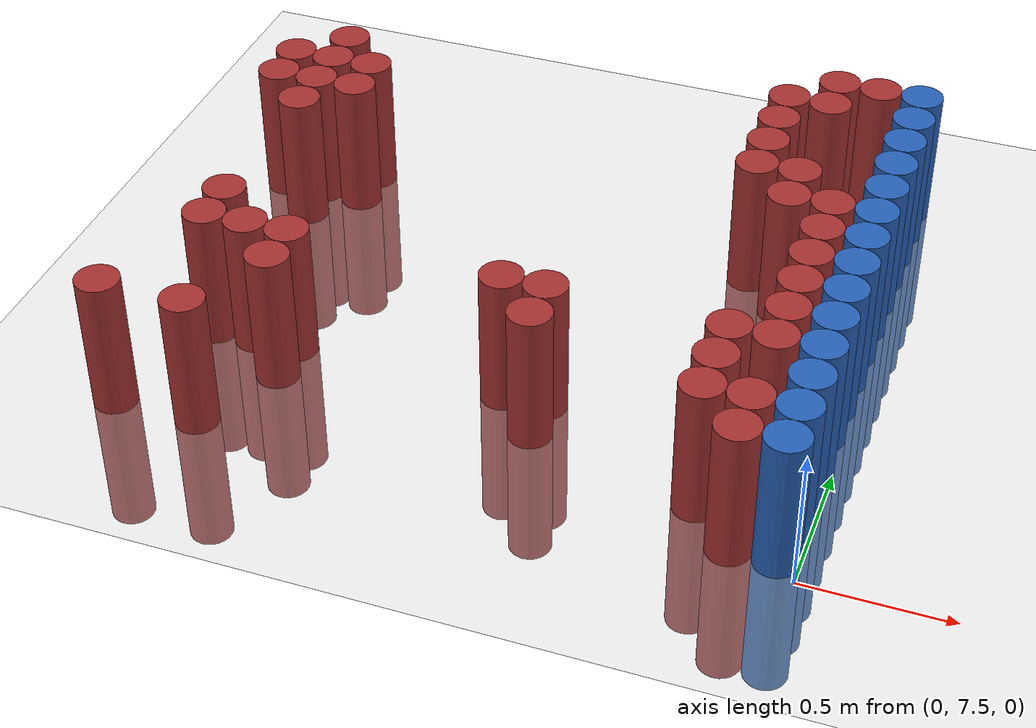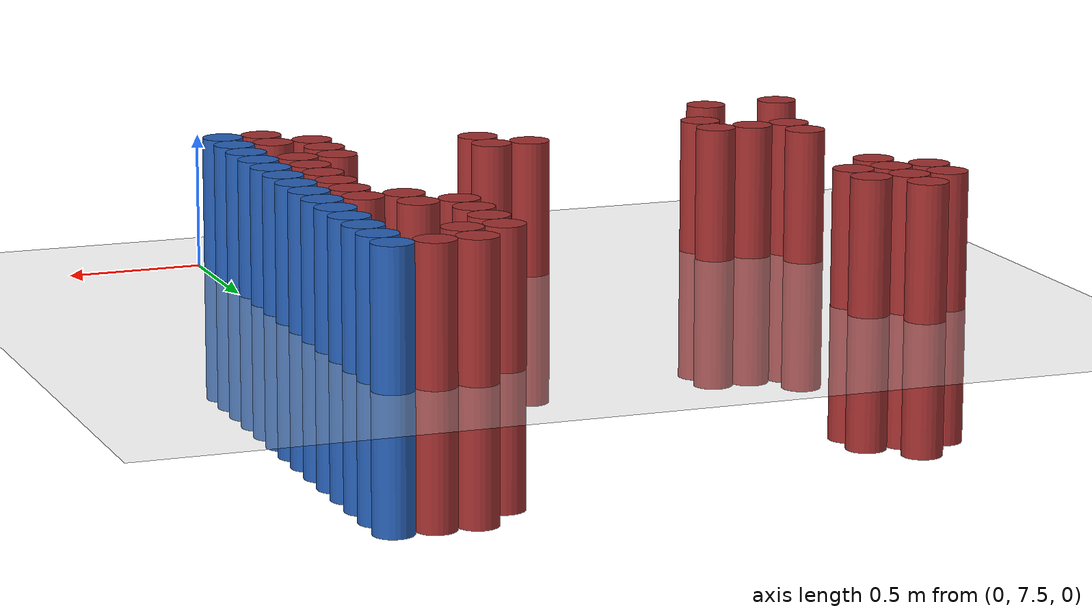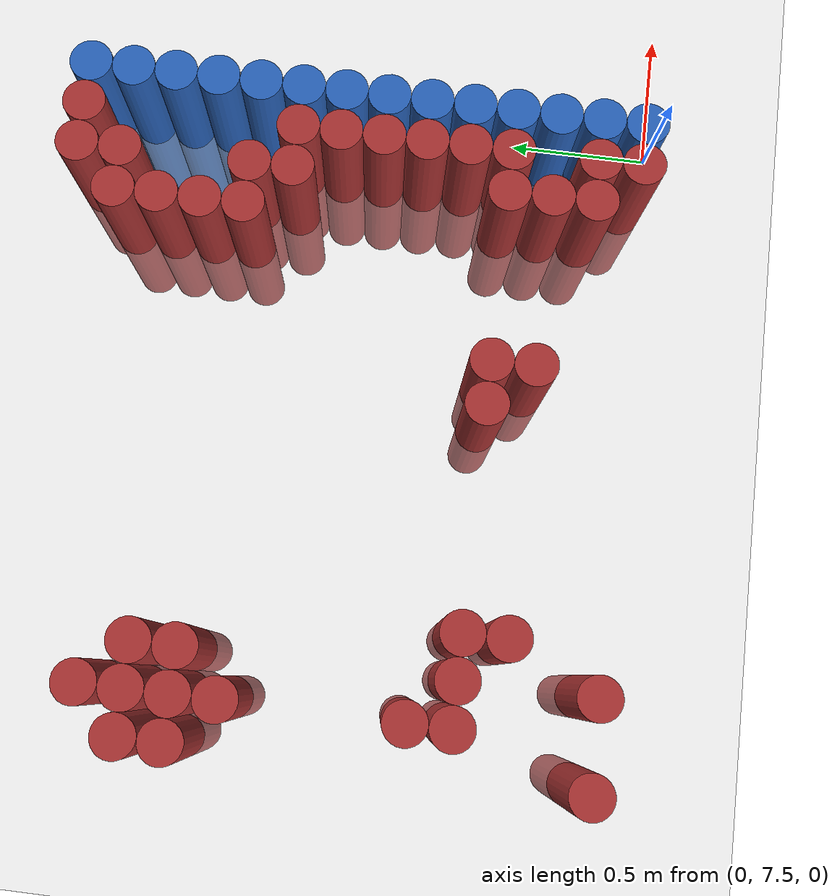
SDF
<sdf version="1.6">
 <world name="default">
  <model name="ground_plane">
   <static>1</static>
   <link name="link">
    <collision name="collision">
     <geometry><plane><normal>0 0 1</normal><size>100 100</size></plane></geometry>
     <surface><friction><ode><mu>100</mu><mu2>50</mu2></ode></friction></surface>
    </collision>
    <visual name="visual">
     <cast_shadows>0</cast_shadows>
     <geometry><plane><normal>0 0 1</normal><size>100 100</size></plane></geometry>
     <material>
      <script><uri>file://media/materials/scripts/gazebo.material</uri><name>Gazebo/Grey</name></script>
     </material>
    </visual>
   </link>
  </model>
  <model name="unit_cylinder_163">
   <static>1</static>
   <pose>-2.325000 7.575000 0.000000 0.000000 0.000000 0.000000</pose>
   <link name="link">
    <inertial>
     <mass>1</mass>
     <inertia><ixx>0.145833</ixx><ixy>0</ixy><ixz>0</ixz><iyy>0.145833</iyy><iyz>0</iyz><izz>0.125</izz></inertia>
    </inertial>
    <collision name="collision">
     <geometry><cylinder><radius>0.075000</radius><length>1</length></cylinder></geometry>
    </collision>
    <visual name="visual">
     <geometry><cylinder><radius>0.075000</radius><length>1</length></cylinder></geometry>
     <material>
      <ambient>0.648000 0.192000 0.192000 1</ambient>
      <diffuse>0.648000 0.192000 0.192000 1</diffuse>
     </material>
     <material>
      <script><name>Gazebo/Grey</name><uri>file://media/materials/scripts/gazebo.material</uri></script>
     </material>
    </visual>
   </link>
  </model>
  <model name="unit_cylinder_164">
   <static>1</static>
   <pose>-2.325000 8.925000 0.000000 0.000000 0.000000 0.000000</pose>
   <link name="link">
    <inertial>
     <mass>1</mass>
     <inertia><ixx>0.145833</ixx><ixy>0</ixy><ixz>0</ixz><iyy>0.145833</iyy><iyz>0</iyz><izz>0.125</izz></inertia>
    </inertial>
    <collision name="collision">
     <geometry><cylinder><radius>0.075000</radius><length>1</length></cylinder></geometry>
    </collision>
    <visual name="visual">
     <geometry><cylinder><radius>0.075000</radius><length>1</length></cylinder></geometry>
     <material>
      <ambient>0.648000 0.192000 0.192000 1</ambient>
      <diffuse>0.648000 0.192000 0.192000 1</diffuse>
     </material>
     <material>
      <script><name>Gazebo/Grey</name><uri>file://media/materials/scripts/gazebo.material</uri></script>
     </material>
    </visual>
   </link>
  </model>
  <model name="unit_cylinder_165">
   <static>1</static>
   <pose>-2.325000 9.075000 0.000000 0.000000 0.000000 0.000000</pose>
   <link name="link">
    <inertial>
     <mass>1</mass>
     <inertia><ixx>0.145833</ixx><ixy>0</ixy><ixz>0</ixz><iyy>0.145833</iyy><iyz>0</iyz><izz>0.125</izz></inertia>
    </inertial>
    <collision name="collision">
     <geometry><cylinder><radius>0.075000</radius><length>1</length></cylinder></geometry>
    </collision>
    <visual name="visual">
     <geometry><cylinder><radius>0.075000</radius><length>1</length></cylinder></geometry>
     <material>
      <ambient>0.648000 0.192000 0.192000 1</ambient>
      <diffuse>0.648000 0.192000 0.192000 1</diffuse>
     </material>
     <material>
      <script><name>Gazebo/Grey</name><uri>file://media/materials/scripts/gazebo.material</uri></script>
     </material>
    </visual>
   </link>
  </model>
  <model name="unit_cylinder_169">
   <static>1</static>
   <pose>-2.175000 8.025000 0.000000 0.000000 0.000000 0.000000</pose>
   <link name="link">
    <inertial>
     <mass>1</mass>
     <inertia><ixx>0.145833</ixx><ixy>0</ixy><ixz>0</ixz><iyy>0.145833</iyy><iyz>0</iyz><izz>0.125</izz></inertia>
    </inertial>
    <collision name="collision">
     <geometry><cylinder><radius>0.075000</radius><length>1</length></cylinder></geometry>
    </collision>
    <visual name="visual">
     <geometry><cylinder><radius>0.075000</radius><length>1</length></cylinder></geometry>
     <material>
      <ambient>0.648000 0.192000 0.192000 1</ambient>
      <diffuse>0.648000 0.192000 0.192000 1</diffuse>
     </material>
     <material>
      <script><name>Gazebo/Grey</name><uri>file://media/materials/scripts/gazebo.material</uri></script>
     </material>
    </visual>
   </link>
  </model>
  <model name="unit_cylinder_170">
   <static>1</static>
   <pose>-2.175000 8.175000 0.000000 0.000000 0.000000 0.000000</pose>
   <link name="link">
    <inertial>
     <mass>1</mass>
     <inertia><ixx>0.145833</ixx><ixy>0</ixy><ixz>0</ixz><iyy>0.145833</iyy><iyz>0</iyz><izz>0.125</izz></inertia>
    </inertial>
    <collision name="collision">
     <geometry><cylinder><radius>0.075000</radius><length>1</length></cylinder></geometry>
    </collision>
    <visual name="visual">
     <geometry><cylinder><radius>0.075000</radius><length>1</length></cylinder></geometry>
     <material>
      <ambient>0.648000 0.192000 0.192000 1</ambient>
      <diffuse>0.648000 0.192000 0.192000 1</diffuse>
     </material>
     <material>
      <script><name>Gazebo/Grey</name><uri>file://media/materials/scripts/gazebo.material</uri></script>
     </material>
    </visual>
   </link>
  </model>
  <model name="unit_cylinder_171">
   <static>1</static>
   <pose>-2.175000 8.775000 0.000000 0.000000 0.000000 0.000000</pose>
   <link name="link">
    <inertial>
     <mass>1</mass>
     <inertia><ixx>0.145833</ixx><ixy>0</ixy><ixz>0</ixz><iyy>0.145833</iyy><iyz>0</iyz><izz>0.125</izz></inertia>
    </inertial>
    <collision name="collision">
     <geometry><cylinder><radius>0.075000</radius><length>1</length></cylinder></geometry>
    </collision>
    <visual name="visual">
     <geometry><cylinder><radius>0.075000</radius><length>1</length></cylinder></geometry>
     <material>
      <ambient>0.648000 0.192000 0.192000 1</ambient>
      <diffuse>0.648000 0.192000 0.192000 1</diffuse>
     </material>
     <material>
      <script><name>Gazebo/Grey</name><uri>file://media/materials/scripts/gazebo.material</uri></script>
     </material>
    </visual>
   </link>
  </model>
  <model name="unit_cylinder_172">
   <static>1</static>
   <pose>-2.175000 8.925000 0.000000 0.000000 0.000000 0.000000</pose>
   <link name="link">
    <inertial>
     <mass>1</mass>
     <inertia><ixx>0.145833</ixx><ixy>0</ixy><ixz>0</ixz><iyy>0.145833</iyy><iyz>0</iyz><izz>0.125</izz></inertia>
    </inertial>
    <collision name="collision">
     <geometry><cylinder><radius>0.075000</radius><length>1</length></cylinder></geometry>
    </collision>
    <visual name="visual">
     <geometry><cylinder><radius>0.075000</radius><length>1</length></cylinder></geometry>
     <material>
      <ambient>0.648000 0.192000 0.192000 1</ambient>
      <diffuse>0.648000 0.192000 0.192000 1</diffuse>
     </material>
     <material>
      <script><name>Gazebo/Grey</name><uri>file://media/materials/scripts/gazebo.material</uri></script>
     </material>
    </visual>
   </link>
  </model>
  <model name="unit_cylinder_173">
   <static>1</static>
   <pose>-2.175000 9.075000 0.000000 0.000000 0.000000 0.000000</pose>
   <link name="link">
    <inertial>
     <mass>1</mass>
     <inertia><ixx>0.145833</ixx><ixy>0</ixy><ixz>0</ixz><iyy>0.145833</iyy><iyz>0</iyz><izz>0.125</izz></inertia>
    </inertial>
    <collision name="collision">
     <geometry><cylinder><radius>0.075000</radius><length>1</length></cylinder></geometry>
    </collision>
    <visual name="visual">
     <geometry><cylinder><radius>0.075000</radius><length>1</length></cylinder></geometry>
     <material>
      <ambient>0.648000 0.192000 0.192000 1</ambient>
      <diffuse>0.648000 0.192000 0.192000 1</diffuse>
     </material>
     <material>
      <script><name>Gazebo/Grey</name><uri>file://media/materials/scripts/gazebo.material</uri></script>
     </material>
    </visual>
   </link>
  </model>
  <model name="unit_cylinder_174">
   <static>1</static>
   <pose>-2.175000 9.225000 0.000000 0.000000 0.000000 0.000000</pose>
   <link name="link">
    <inertial>
     <mass>1</mass>
     <inertia><ixx>0.145833</ixx><ixy>0</ixy><ixz>0</ixz><iyy>0.145833</iyy><iyz>0</iyz><izz>0.125</izz></inertia>
    </inertial>
    <collision name="collision">
     <geometry><cylinder><radius>0.075000</radius><length>1</length></cylinder></geometry>
    </collision>
    <visual name="visual">
     <geometry><cylinder><radius>0.075000</radius><length>1</length></cylinder></geometry>
     <material>
      <ambient>0.648000 0.192000 0.192000 1</ambient>
      <diffuse>0.648000 0.192000 0.192000 1</diffuse>
     </material>
     <material>
      <script><name>Gazebo/Grey</name><uri>file://media/materials/scripts/gazebo.material</uri></script>
     </material>
    </visual>
   </link>
  </model>
  <model name="unit_cylinder_176">
   <static>1</static>
   <pose>-2.025000 7.575000 0.000000 0.000000 0.000000 0.000000</pose>
   <link name="link">
    <inertial>
     <mass>1</mass>
     <inertia><ixx>0.145833</ixx><ixy>0</ixy><ixz>0</ixz><iyy>0.145833</iyy><iyz>0</iyz><izz>0.125</izz></inertia>
    </inertial>
    <collision name="collision">
     <geometry><cylinder><radius>0.075000</radius><length>1</length></cylinder></geometry>
    </collision>
    <visual name="visual">
     <geometry><cylinder><radius>0.075000</radius><length>1</length></cylinder></geometry>
     <material>
      <ambient>0.648000 0.192000 0.192000 1</ambient>
      <diffuse>0.648000 0.192000 0.192000 1</diffuse>
     </material>
     <material>
      <script><name>Gazebo/Grey</name><uri>file://media/materials/scripts/gazebo.material</uri></script>
     </material>
    </visual>
   </link>
  </model>
  <model name="unit_cylinder_177">
   <static>1</static>
   <pose>-2.025000 8.025000 0.000000 0.000000 0.000000 0.000000</pose>
   <link name="link">
    <inertial>
     <mass>1</mass>
     <inertia><ixx>0.145833</ixx><ixy>0</ixy><ixz>0</ixz><iyy>0.145833</iyy><iyz>0</iyz><izz>0.125</izz></inertia>
    </inertial>
    <collision name="collision">
     <geometry><cylinder><radius>0.075000</radius><length>1</length></cylinder></geometry>
    </collision>
    <visual name="visual">
     <geometry><cylinder><radius>0.075000</radius><length>1</length></cylinder></geometry>
     <material>
      <ambient>0.648000 0.192000 0.192000 1</ambient>
      <diffuse>0.648000 0.192000 0.192000 1</diffuse>
     </material>
     <material>
      <script><name>Gazebo/Grey</name><uri>file://media/materials/scripts/gazebo.material</uri></script>
     </material>
    </visual>
   </link>
  </model>
  <model name="unit_cylinder_178">
   <static>1</static>
   <pose>-2.025000 8.925000 0.000000 0.000000 0.000000 0.000000</pose>
   <link name="link">
    <inertial>
     <mass>1</mass>
     <inertia><ixx>0.145833</ixx><ixy>0</ixy><ixz>0</ixz><iyy>0.145833</iyy><iyz>0</iyz><izz>0.125</izz></inertia>
    </inertial>
    <collision name="collision">
     <geometry><cylinder><radius>0.075000</radius><length>1</length></cylinder></geometry>
    </collision>
    <visual name="visual">
     <geometry><cylinder><radius>0.075000</radius><length>1</length></cylinder></geometry>
     <material>
      <ambient>0.648000 0.192000 0.192000 1</ambient>
      <diffuse>0.648000 0.192000 0.192000 1</diffuse>
     </material>
     <material>
      <script><name>Gazebo/Grey</name><uri>file://media/materials/scripts/gazebo.material</uri></script>
     </material>
    </visual>
   </link>
  </model>
  <model name="unit_cylinder_179">
   <static>1</static>
   <pose>-2.025000 9.075000 0.000000 0.000000 0.000000 0.000000</pose>
   <link name="link">
    <inertial>
     <mass>1</mass>
     <inertia><ixx>0.145833</ixx><ixy>0</ixy><ixz>0</ixz><iyy>0.145833</iyy><iyz>0</iyz><izz>0.125</izz></inertia>
    </inertial>
    <collision name="collision">
     <geometry><cylinder><radius>0.075000</radius><length>1</length></cylinder></geometry>
    </collision>
    <visual name="visual">
     <geometry><cylinder><radius>0.075000</radius><length>1</length></cylinder></geometry>
     <material>
      <ambient>0.648000 0.192000 0.192000 1</ambient>
      <diffuse>0.648000 0.192000 0.192000 1</diffuse>
     </material>
     <material>
      <script><name>Gazebo/Grey</name><uri>file://media/materials/scripts/gazebo.material</uri></script>
     </material>
    </visual>
   </link>
  </model>
  <model name="unit_cylinder_181">
   <static>1</static>
   <pose>-1.875000 7.875000 0.000000 0.000000 0.000000 0.000000</pose>
   <link name="link">
    <inertial>
     <mass>1</mass>
     <inertia><ixx>0.145833</ixx><ixy>0</ixy><ixz>0</ixz><iyy>0.145833</iyy><iyz>0</iyz><izz>0.125</izz></inertia>
    </inertial>
    <collision name="collision">
     <geometry><cylinder><radius>0.075000</radius><length>1</length></cylinder></geometry>
    </collision>
    <visual name="visual">
     <geometry><cylinder><radius>0.075000</radius><length>1</length></cylinder></geometry>
     <material>
      <ambient>0.648000 0.192000 0.192000 1</ambient>
      <diffuse>0.648000 0.192000 0.192000 1</diffuse>
     </material>
     <material>
      <script><name>Gazebo/Grey</name><uri>file://media/materials/scripts/gazebo.material</uri></script>
     </material>
    </visual>
   </link>
  </model>
  <model name="unit_cylinder_182">
   <static>1</static>
   <pose>-1.875000 8.025000 0.000000 0.000000 0.000000 0.000000</pose>
   <link name="link">
    <inertial>
     <mass>1</mass>
     <inertia><ixx>0.145833</ixx><ixy>0</ixy><ixz>0</ixz><iyy>0.145833</iyy><iyz>0</iyz><izz>0.125</izz></inertia>
    </inertial>
    <collision name="collision">
     <geometry><cylinder><radius>0.075000</radius><length>1</length></cylinder></geometry>
    </collision>
    <visual name="visual">
     <geometry><cylinder><radius>0.075000</radius><length>1</length></cylinder></geometry>
     <material>
      <ambient>0.648000 0.192000 0.192000 1</ambient>
      <diffuse>0.648000 0.192000 0.192000 1</diffuse>
     </material>
     <material>
      <script><name>Gazebo/Grey</name><uri>file://media/materials/scripts/gazebo.material</uri></script>
     </material>
    </visual>
   </link>
  </model>
  <model name="unit_cylinder_190">
   <static>1</static>
   <pose>-1.125000 8.025000 0.000000 0.000000 0.000000 0.000000</pose>
   <link name="link">
    <inertial>
     <mass>1</mass>
     <inertia><ixx>0.145833</ixx><ixy>0</ixy><ixz>0</ixz><iyy>0.145833</iyy><iyz>0</iyz><izz>0.125</izz></inertia>
    </inertial>
    <collision name="collision">
     <geometry><cylinder><radius>0.075000</radius><length>1</length></cylinder></geometry>
    </collision>
    <visual name="visual">
     <geometry><cylinder><radius>0.075000</radius><length>1</length></cylinder></geometry>
     <material>
      <ambient>0.648000 0.192000 0.192000 1</ambient>
      <diffuse>0.648000 0.192000 0.192000 1</diffuse>
     </material>
     <material>
      <script><name>Gazebo/Grey</name><uri>file://media/materials/scripts/gazebo.material</uri></script>
     </material>
    </visual>
   </link>
  </model>
  <model name="unit_cylinder_193">
   <static>1</static>
   <pose>-0.975000 7.875000 0.000000 0.000000 0.000000 0.000000</pose>
   <link name="link">
    <inertial>
     <mass>1</mass>
     <inertia><ixx>0.145833</ixx><ixy>0</ixy><ixz>0</ixz><iyy>0.145833</iyy><iyz>0</iyz><izz>0.125</izz></inertia>
    </inertial>
    <collision name="collision">
     <geometry><cylinder><radius>0.075000</radius><length>1</length></cylinder></geometry>
    </collision>
    <visual name="visual">
     <geometry><cylinder><radius>0.075000</radius><length>1</length></cylinder></geometry>
     <material>
      <ambient>0.648000 0.192000 0.192000 1</ambient>
      <diffuse>0.648000 0.192000 0.192000 1</diffuse>
     </material>
     <material>
      <script><name>Gazebo/Grey</name><uri>file://media/materials/scripts/gazebo.material</uri></script>
     </material>
    </visual>
   </link>
  </model>
  <model name="unit_cylinder_194">
   <static>1</static>
   <pose>-0.975000 8.025000 0.000000 0.000000 0.000000 0.000000</pose>
   <link name="link">
    <inertial>
     <mass>1</mass>
     <inertia><ixx>0.145833</ixx><ixy>0</ixy><ixz>0</ixz><iyy>0.145833</iyy><iyz>0</iyz><izz>0.125</izz></inertia>
    </inertial>
    <collision name="collision">
     <geometry><cylinder><radius>0.075000</radius><length>1</length></cylinder></geometry>
    </collision>
    <visual name="visual">
     <geometry><cylinder><radius>0.075000</radius><length>1</length></cylinder></geometry>
     <material>
      <ambient>0.648000 0.192000 0.192000 1</ambient>
      <diffuse>0.648000 0.192000 0.192000 1</diffuse>
     </material>
     <material>
      <script><name>Gazebo/Grey</name><uri>file://media/materials/scripts/gazebo.material</uri></script>
     </material>
    </visual>
   </link>
  </model>
  <model name="unit_cylinder_196">
   <static>1</static>
   <pose>-0.525000 8.925000 0.000000 0.000000 0.000000 0.000000</pose>
   <link name="link">
    <inertial>
     <mass>1</mass>
     <inertia><ixx>0.145833</ixx><ixy>0</ixy><ixz>0</ixz><iyy>0.145833</iyy><iyz>0</iyz><izz>0.125</izz></inertia>
    </inertial>
    <collision name="collision">
     <geometry><cylinder><radius>0.075000</radius><length>1</length></cylinder></geometry>
    </collision>
    <visual name="visual">
     <geometry><cylinder><radius>0.075000</radius><length>1</length></cylinder></geometry>
     <material>
      <ambient>0.648000 0.192000 0.192000 1</ambient>
      <diffuse>0.648000 0.192000 0.192000 1</diffuse>
     </material>
     <material>
      <script><name>Gazebo/Grey</name><uri>file://media/materials/scripts/gazebo.material</uri></script>
     </material>
    </visual>
   </link>
  </model>
  <model name="unit_cylinder_197">
   <static>1</static>
   <pose>-0.525000 9.075000 0.000000 0.000000 0.000000 0.000000</pose>
   <link name="link">
    <inertial>
     <mass>1</mass>
     <inertia><ixx>0.145833</ixx><ixy>0</ixy><ixz>0</ixz><iyy>0.145833</iyy><iyz>0</iyz><izz>0.125</izz></inertia>
    </inertial>
    <collision name="collision">
     <geometry><cylinder><radius>0.075000</radius><length>1</length></cylinder></geometry>
    </collision>
    <visual name="visual">
     <geometry><cylinder><radius>0.075000</radius><length>1</length></cylinder></geometry>
     <material>
      <ambient>0.648000 0.192000 0.192000 1</ambient>
      <diffuse>0.648000 0.192000 0.192000 1</diffuse>
     </material>
     <material>
      <script><name>Gazebo/Grey</name><uri>file://media/materials/scripts/gazebo.material</uri></script>
     </material>
    </visual>
   </link>
  </model>
  <model name="unit_cylinder_198">
   <static>1</static>
   <pose>-0.525000 9.225000 0.000000 0.000000 0.000000 0.000000</pose>
   <link name="link">
    <inertial>
     <mass>1</mass>
     <inertia><ixx>0.145833</ixx><ixy>0</ixy><ixz>0</ixz><iyy>0.145833</iyy><iyz>0</iyz><izz>0.125</izz></inertia>
    </inertial>
    <collision name="collision">
     <geometry><cylinder><radius>0.075000</radius><length>1</length></cylinder></geometry>
    </collision>
    <visual name="visual">
     <geometry><cylinder><radius>0.075000</radius><length>1</length></cylinder></geometry>
     <material>
      <ambient>0.648000 0.192000 0.192000 1</ambient>
      <diffuse>0.648000 0.192000 0.192000 1</diffuse>
     </material>
     <material>
      <script><name>Gazebo/Grey</name><uri>file://media/materials/scripts/gazebo.material</uri></script>
     </material>
    </visual>
   </link>
  </model>
  <model name="unit_cylinder_199">
   <static>1</static>
   <pose>-0.525000 9.375000 0.000000 0.000000 0.000000 0.000000</pose>
   <link name="link">
    <inertial>
     <mass>1</mass>
     <inertia><ixx>0.145833</ixx><ixy>0</ixy><ixz>0</ixz><iyy>0.145833</iyy><iyz>0</iyz><izz>0.125</izz></inertia>
    </inertial>
    <collision name="collision">
     <geometry><cylinder><radius>0.075000</radius><length>1</length></cylinder></geometry>
    </collision>
    <visual name="visual">
     <geometry><cylinder><radius>0.075000</radius><length>1</length></cylinder></geometry>
     <material>
      <ambient>0.648000 0.192000 0.192000 1</ambient>
      <diffuse>0.648000 0.192000 0.192000 1</diffuse>
     </material>
     <material>
      <script><name>Gazebo/Grey</name><uri>file://media/materials/scripts/gazebo.material</uri></script>
     </material>
    </visual>
   </link>
  </model>
  <model name="unit_cylinder_202">
   <static>1</static>
   <pose>-0.375000 7.725000 0.000000 0.000000 0.000000 0.000000</pose>
   <link name="link">
    <inertial>
     <mass>1</mass>
     <inertia><ixx>0.145833</ixx><ixy>0</ixy><ixz>0</ixz><iyy>0.145833</iyy><iyz>0</iyz><izz>0.125</izz></inertia>
    </inertial>
    <collision name="collision">
     <geometry><cylinder><radius>0.075000</radius><length>1</length></cylinder></geometry>
    </collision>
    <visual name="visual">
     <geometry><cylinder><radius>0.075000</radius><length>1</length></cylinder></geometry>
     <material>
      <ambient>0.648000 0.192000 0.192000 1</ambient>
      <diffuse>0.648000 0.192000 0.192000 1</diffuse>
     </material>
     <material>
      <script><name>Gazebo/Grey</name><uri>file://media/materials/scripts/gazebo.material</uri></script>
     </material>
    </visual>
   </link>
  </model>
  <model name="unit_cylinder_203">
   <static>1</static>
   <pose>-0.375000 7.875000 0.000000 0.000000 0.000000 0.000000</pose>
   <link name="link">
    <inertial>
     <mass>1</mass>
     <inertia><ixx>0.145833</ixx><ixy>0</ixy><ixz>0</ixz><iyy>0.145833</iyy><iyz>0</iyz><izz>0.125</izz></inertia>
    </inertial>
    <collision name="collision">
     <geometry><cylinder><radius>0.075000</radius><length>1</length></cylinder></geometry>
    </collision>
    <visual name="visual">
     <geometry><cylinder><radius>0.075000</radius><length>1</length></cylinder></geometry>
     <material>
      <ambient>0.648000 0.192000 0.192000 1</ambient>
      <diffuse>0.648000 0.192000 0.192000 1</diffuse>
     </material>
     <material>
      <script><name>Gazebo/Grey</name><uri>file://media/materials/scripts/gazebo.material</uri></script>
     </material>
    </visual>
   </link>
  </model>
  <model name="unit_cylinder_204">
   <static>1</static>
   <pose>-0.375000 8.025000 0.000000 0.000000 0.000000 0.000000</pose>
   <link name="link">
    <inertial>
     <mass>1</mass>
     <inertia><ixx>0.145833</ixx><ixy>0</ixy><ixz>0</ixz><iyy>0.145833</iyy><iyz>0</iyz><izz>0.125</izz></inertia>
    </inertial>
    <collision name="collision">
     <geometry><cylinder><radius>0.075000</radius><length>1</length></cylinder></geometry>
    </collision>
    <visual name="visual">
     <geometry><cylinder><radius>0.075000</radius><length>1</length></cylinder></geometry>
     <material>
      <ambient>0.648000 0.192000 0.192000 1</ambient>
      <diffuse>0.648000 0.192000 0.192000 1</diffuse>
     </material>
     <material>
      <script><name>Gazebo/Grey</name><uri>file://media/materials/scripts/gazebo.material</uri></script>
     </material>
    </visual>
   </link>
  </model>
  <model name="unit_cylinder_205">
   <static>1</static>
   <pose>-0.375000 8.775000 0.000000 0.000000 0.000000 0.000000</pose>
   <link name="link">
    <inertial>
     <mass>1</mass>
     <inertia><ixx>0.145833</ixx><ixy>0</ixy><ixz>0</ixz><iyy>0.145833</iyy><iyz>0</iyz><izz>0.125</izz></inertia>
    </inertial>
    <collision name="collision">
     <geometry><cylinder><radius>0.075000</radius><length>1</length></cylinder></geometry>
    </collision>
    <visual name="visual">
     <geometry><cylinder><radius>0.075000</radius><length>1</length></cylinder></geometry>
     <material>
      <ambient>0.648000 0.192000 0.192000 1</ambient>
      <diffuse>0.648000 0.192000 0.192000 1</diffuse>
     </material>
     <material>
      <script><name>Gazebo/Grey</name><uri>file://media/materials/scripts/gazebo.material</uri></script>
     </material>
    </visual>
   </link>
  </model>
  <model name="unit_cylinder_206">
   <static>1</static>
   <pose>-0.375000 8.925000 0.000000 0.000000 0.000000 0.000000</pose>
   <link name="link">
    <inertial>
     <mass>1</mass>
     <inertia><ixx>0.145833</ixx><ixy>0</ixy><ixz>0</ixz><iyy>0.145833</iyy><iyz>0</iyz><izz>0.125</izz></inertia>
    </inertial>
    <collision name="collision">
     <geometry><cylinder><radius>0.075000</radius><length>1</length></cylinder></geometry>
    </collision>
    <visual name="visual">
     <geometry><cylinder><radius>0.075000</radius><length>1</length></cylinder></geometry>
     <material>
      <ambient>0.648000 0.192000 0.192000 1</ambient>
      <diffuse>0.648000 0.192000 0.192000 1</diffuse>
     </material>
     <material>
      <script><name>Gazebo/Grey</name><uri>file://media/materials/scripts/gazebo.material</uri></script>
     </material>
    </visual>
   </link>
  </model>
  <model name="unit_cylinder_207">
   <static>1</static>
   <pose>-0.375000 9.375000 0.000000 0.000000 0.000000 0.000000</pose>
   <link name="link">
    <inertial>
     <mass>1</mass>
     <inertia><ixx>0.145833</ixx><ixy>0</ixy><ixz>0</ixz><iyy>0.145833</iyy><iyz>0</iyz><izz>0.125</izz></inertia>
    </inertial>
    <collision name="collision">
     <geometry><cylinder><radius>0.075000</radius><length>1</length></cylinder></geometry>
    </collision>
    <visual name="visual">
     <geometry><cylinder><radius>0.075000</radius><length>1</length></cylinder></geometry>
     <material>
      <ambient>0.648000 0.192000 0.192000 1</ambient>
      <diffuse>0.648000 0.192000 0.192000 1</diffuse>
     </material>
     <material>
      <script><name>Gazebo/Grey</name><uri>file://media/materials/scripts/gazebo.material</uri></script>
     </material>
    </visual>
   </link>
  </model>
  <model name="unit_cylinder_208">
   <static>1</static>
   <pose>-0.375000 9.525000 0.000000 0.000000 0.000000 0.000000</pose>
   <link name="link">
    <inertial>
     <mass>1</mass>
     <inertia><ixx>0.145833</ixx><ixy>0</ixy><ixz>0</ixz><iyy>0.145833</iyy><iyz>0</iyz><izz>0.125</izz></inertia>
    </inertial>
    <collision name="collision">
     <geometry><cylinder><radius>0.075000</radius><length>1</length></cylinder></geometry>
    </collision>
    <visual name="visual">
     <geometry><cylinder><radius>0.075000</radius><length>1</length></cylinder></geometry>
     <material>
      <ambient>0.648000 0.192000 0.192000 1</ambient>
      <diffuse>0.648000 0.192000 0.192000 1</diffuse>
     </material>
     <material>
      <script><name>Gazebo/Grey</name><uri>file://media/materials/scripts/gazebo.material</uri></script>
     </material>
    </visual>
   </link>
  </model>
  <model name="unit_cylinder_219">
   <static>1</static>
   <pose>-0.225000 7.575000 0.000000 0.000000 0.000000 0.000000</pose>
   <link name="link">
    <inertial>
     <mass>1</mass>
     <inertia><ixx>0.145833</ixx><ixy>0</ixy><ixz>0</ixz><iyy>0.145833</iyy><iyz>0</iyz><izz>0.125</izz></inertia>
    </inertial>
    <collision name="collision">
     <geometry><cylinder><radius>0.075000</radius><length>1</length></cylinder></geometry>
    </collision>
    <visual name="visual">
     <geometry><cylinder><radius>0.075000</radius><length>1</length></cylinder></geometry>
     <material>
      <ambient>0.648000 0.192000 0.192000 1</ambient>
      <diffuse>0.648000 0.192000 0.192000 1</diffuse>
     </material>
     <material>
      <script><name>Gazebo/Grey</name><uri>file://media/materials/scripts/gazebo.material</uri></script>
     </material>
    </visual>
   </link>
  </model>
  <model name="unit_cylinder_220">
   <static>1</static>
   <pose>-0.225000 7.725000 0.000000 0.000000 0.000000 0.000000</pose>
   <link name="link">
    <inertial>
     <mass>1</mass>
     <inertia><ixx>0.145833</ixx><ixy>0</ixy><ixz>0</ixz><iyy>0.145833</iyy><iyz>0</iyz><izz>0.125</izz></inertia>
    </inertial>
    <collision name="collision">
     <geometry><cylinder><radius>0.075000</radius><length>1</length></cylinder></geometry>
    </collision>
    <visual name="visual">
     <geometry><cylinder><radius>0.075000</radius><length>1</length></cylinder></geometry>
     <material>
      <ambient>0.648000 0.192000 0.192000 1</ambient>
      <diffuse>0.648000 0.192000 0.192000 1</diffuse>
     </material>
     <material>
      <script><name>Gazebo/Grey</name><uri>file://media/materials/scripts/gazebo.material</uri></script>
     </material>
    </visual>
   </link>
  </model>
  <model name="unit_cylinder_221">
   <static>1</static>
   <pose>-0.225000 8.025000 0.000000 0.000000 0.000000 0.000000</pose>
   <link name="link">
    <inertial>
     <mass>1</mass>
     <inertia><ixx>0.145833</ixx><ixy>0</ixy><ixz>0</ixz><iyy>0.145833</iyy><iyz>0</iyz><izz>0.125</izz></inertia>
    </inertial>
    <collision name="collision">
     <geometry><cylinder><radius>0.075000</radius><length>1</length></cylinder></geometry>
    </collision>
    <visual name="visual">
     <geometry><cylinder><radius>0.075000</radius><length>1</length></cylinder></geometry>
     <material>
      <ambient>0.648000 0.192000 0.192000 1</ambient>
      <diffuse>0.648000 0.192000 0.192000 1</diffuse>
     </material>
     <material>
      <script><name>Gazebo/Grey</name><uri>file://media/materials/scripts/gazebo.material</uri></script>
     </material>
    </visual>
   </link>
  </model>
  <model name="unit_cylinder_222">
   <static>1</static>
   <pose>-0.225000 8.175000 0.000000 0.000000 0.000000 0.000000</pose>
   <link name="link">
    <inertial>
     <mass>1</mass>
     <inertia><ixx>0.145833</ixx><ixy>0</ixy><ixz>0</ixz><iyy>0.145833</iyy><iyz>0</iyz><izz>0.125</izz></inertia>
    </inertial>
    <collision name="collision">
     <geometry><cylinder><radius>0.075000</radius><length>1</length></cylinder></geometry>
    </collision>
    <visual name="visual">
     <geometry><cylinder><radius>0.075000</radius><length>1</length></cylinder></geometry>
     <material>
      <ambient>0.648000 0.192000 0.192000 1</ambient>
      <diffuse>0.648000 0.192000 0.192000 1</diffuse>
     </material>
     <material>
      <script><name>Gazebo/Grey</name><uri>file://media/materials/scripts/gazebo.material</uri></script>
     </material>
    </visual>
   </link>
  </model>
  <model name="unit_cylinder_223">
   <static>1</static>
   <pose>-0.225000 8.325000 0.000000 0.000000 0.000000 0.000000</pose>
   <link name="link">
    <inertial>
     <mass>1</mass>
     <inertia><ixx>0.145833</ixx><ixy>0</ixy><ixz>0</ixz><iyy>0.145833</iyy><iyz>0</iyz><izz>0.125</izz></inertia>
    </inertial>
    <collision name="collision">
     <geometry><cylinder><radius>0.075000</radius><length>1</length></cylinder></geometry>
    </collision>
    <visual name="visual">
     <geometry><cylinder><radius>0.075000</radius><length>1</length></cylinder></geometry>
     <material>
      <ambient>0.648000 0.192000 0.192000 1</ambient>
      <diffuse>0.648000 0.192000 0.192000 1</diffuse>
     </material>
     <material>
      <script><name>Gazebo/Grey</name><uri>file://media/materials/scripts/gazebo.material</uri></script>
     </material>
    </visual>
   </link>
  </model>
  <model name="unit_cylinder_224">
   <static>1</static>
   <pose>-0.225000 8.475000 0.000000 0.000000 0.000000 0.000000</pose>
   <link name="link">
    <inertial>
     <mass>1</mass>
     <inertia><ixx>0.145833</ixx><ixy>0</ixy><ixz>0</ixz><iyy>0.145833</iyy><iyz>0</iyz><izz>0.125</izz></inertia>
    </inertial>
    <collision name="collision">
     <geometry><cylinder><radius>0.075000</radius><length>1</length></cylinder></geometry>
    </collision>
    <visual name="visual">
     <geometry><cylinder><radius>0.075000</radius><length>1</length></cylinder></geometry>
     <material>
      <ambient>0.648000 0.192000 0.192000 1</ambient>
      <diffuse>0.648000 0.192000 0.192000 1</diffuse>
     </material>
     <material>
      <script><name>Gazebo/Grey</name><uri>file://media/materials/scripts/gazebo.material</uri></script>
     </material>
    </visual>
   </link>
  </model>
  <model name="unit_cylinder_225">
   <static>1</static>
   <pose>-0.225000 8.625000 0.000000 0.000000 0.000000 0.000000</pose>
   <link name="link">
    <inertial>
     <mass>1</mass>
     <inertia><ixx>0.145833</ixx><ixy>0</ixy><ixz>0</ixz><iyy>0.145833</iyy><iyz>0</iyz><izz>0.125</izz></inertia>
    </inertial>
    <collision name="collision">
     <geometry><cylinder><radius>0.075000</radius><length>1</length></cylinder></geometry>
    </collision>
    <visual name="visual">
     <geometry><cylinder><radius>0.075000</radius><length>1</length></cylinder></geometry>
     <material>
      <ambient>0.648000 0.192000 0.192000 1</ambient>
      <diffuse>0.648000 0.192000 0.192000 1</diffuse>
     </material>
     <material>
      <script><name>Gazebo/Grey</name><uri>file://media/materials/scripts/gazebo.material</uri></script>
     </material>
    </visual>
   </link>
  </model>
  <model name="unit_cylinder_226">
   <static>1</static>
   <pose>-0.225000 8.775000 0.000000 0.000000 0.000000 0.000000</pose>
   <link name="link">
    <inertial>
     <mass>1</mass>
     <inertia><ixx>0.145833</ixx><ixy>0</ixy><ixz>0</ixz><iyy>0.145833</iyy><iyz>0</iyz><izz>0.125</izz></inertia>
    </inertial>
    <collision name="collision">
     <geometry><cylinder><radius>0.075000</radius><length>1</length></cylinder></geometry>
    </collision>
    <visual name="visual">
     <geometry><cylinder><radius>0.075000</radius><length>1</length></cylinder></geometry>
     <material>
      <ambient>0.648000 0.192000 0.192000 1</ambient>
      <diffuse>0.648000 0.192000 0.192000 1</diffuse>
     </material>
     <material>
      <script><name>Gazebo/Grey</name><uri>file://media/materials/scripts/gazebo.material</uri></script>
     </material>
    </visual>
   </link>
  </model>
  <model name="unit_cylinder_227">
   <static>1</static>
   <pose>-0.225000 9.525000 0.000000 0.000000 0.000000 0.000000</pose>
   <link name="link">
    <inertial>
     <mass>1</mass>
     <inertia><ixx>0.145833</ixx><ixy>0</ixy><ixz>0</ixz><iyy>0.145833</iyy><iyz>0</iyz><izz>0.125</izz></inertia>
    </inertial>
    <collision name="collision">
     <geometry><cylinder><radius>0.075000</radius><length>1</length></cylinder></geometry>
    </collision>
    <visual name="visual">
     <geometry><cylinder><radius>0.075000</radius><length>1</length></cylinder></geometry>
     <material>
      <ambient>0.648000 0.192000 0.192000 1</ambient>
      <diffuse>0.648000 0.192000 0.192000 1</diffuse>
     </material>
     <material>
      <script><name>Gazebo/Grey</name><uri>file://media/materials/scripts/gazebo.material</uri></script>
     </material>
    </visual>
   </link>
  </model>
  <model name="unit_cylinder_244">
   <static>1</static>
   <pose>-0.075000 7.575000 0.000000 0.000000 0.000000 0.000000</pose>
   <link name="link">
    <inertial>
     <mass>1</mass>
     <inertia><ixx>0.145833</ixx><ixy>0</ixy><ixz>0</ixz><iyy>0.145833</iyy><iyz>0</iyz><izz>0.125</izz></inertia>
    </inertial>
    <collision name="collision">
     <geometry><cylinder><radius>0.075000</radius><length>1</length></cylinder></geometry>
    </collision>
    <visual name="visual">
     <geometry><cylinder><radius>0.075000</radius><length>1</length></cylinder></geometry>
     <material>
      <ambient>0.152000 0.379000 0.720000 1</ambient>
      <diffuse>0.152000 0.379000 0.720000 1</diffuse>
     </material>
     <material>
      <script><name>Gazebo/Grey</name><uri>file://media/materials/scripts/gazebo.material</uri></script>
     </material>
    </visual>
   </link>
  </model>
  <model name="unit_cylinder_245">
   <static>1</static>
   <pose>-0.075000 7.725000 0.000000 0.000000 0.000000 0.000000</pose>
   <link name="link">
    <inertial>
     <mass>1</mass>
     <inertia><ixx>0.145833</ixx><ixy>0</ixy><ixz>0</ixz><iyy>0.145833</iyy><iyz>0</iyz><izz>0.125</izz></inertia>
    </inertial>
    <collision name="collision">
     <geometry><cylinder><radius>0.075000</radius><length>1</length></cylinder></geometry>
    </collision>
    <visual name="visual">
     <geometry><cylinder><radius>0.075000</radius><length>1</length></cylinder></geometry>
     <material>
      <ambient>0.152000 0.379000 0.720000 1</ambient>
      <diffuse>0.152000 0.379000 0.720000 1</diffuse>
     </material>
     <material>
      <script><name>Gazebo/Grey</name><uri>file://media/materials/scripts/gazebo.material</uri></script>
     </material>
    </visual>
   </link>
  </model>
  <model name="unit_cylinder_246">
   <static>1</static>
   <pose>-0.075000 7.875000 0.000000 0.000000 0.000000 0.000000</pose>
   <link name="link">
    <inertial>
     <mass>1</mass>
     <inertia><ixx>0.145833</ixx><ixy>0</ixy><ixz>0</ixz><iyy>0.145833</iyy><iyz>0</iyz><izz>0.125</izz></inertia>
    </inertial>
    <collision name="collision">
     <geometry><cylinder><radius>0.075000</radius><length>1</length></cylinder></geometry>
    </collision>
    <visual name="visual">
     <geometry><cylinder><radius>0.075000</radius><length>1</length></cylinder></geometry>
     <material>
      <ambient>0.152000 0.379000 0.720000 1</ambient>
      <diffuse>0.152000 0.379000 0.720000 1</diffuse>
     </material>
     <material>
      <script><name>Gazebo/Grey</name><uri>file://media/materials/scripts/gazebo.material</uri></script>
     </material>
    </visual>
   </link>
  </model>
  <model name="unit_cylinder_247">
   <static>1</static>
   <pose>-0.075000 8.025000 0.000000 0.000000 0.000000 0.000000</pose>
   <link name="link">
    <inertial>
     <mass>1</mass>
     <inertia><ixx>0.145833</ixx><ixy>0</ixy><ixz>0</ixz><iyy>0.145833</iyy><iyz>0</iyz><izz>0.125</izz></inertia>
    </inertial>
    <collision name="collision">
     <geometry><cylinder><radius>0.075000</radius><length>1</length></cylinder></geometry>
    </collision>
    <visual name="visual">
     <geometry><cylinder><radius>0.075000</radius><length>1</length></cylinder></geometry>
     <material>
      <ambient>0.152000 0.379000 0.720000 1</ambient>
      <diffuse>0.152000 0.379000 0.720000 1</diffuse>
     </material>
     <material>
      <script><name>Gazebo/Grey</name><uri>file://media/materials/scripts/gazebo.material</uri></script>
     </material>
    </visual>
   </link>
  </model>
  <model name="unit_cylinder_248">
   <static>1</static>
   <pose>-0.075000 8.175000 0.000000 0.000000 0.000000 0.000000</pose>
   <link name="link">
    <inertial>
     <mass>1</mass>
     <inertia><ixx>0.145833</ixx><ixy>0</ixy><ixz>0</ixz><iyy>0.145833</iyy><iyz>0</iyz><izz>0.125</izz></inertia>
    </inertial>
    <collision name="collision">
     <geometry><cylinder><radius>0.075000</radius><length>1</length></cylinder></geometry>
    </collision>
    <visual name="visual">
     <geometry><cylinder><radius>0.075000</radius><length>1</length></cylinder></geometry>
     <material>
      <ambient>0.152000 0.379000 0.720000 1</ambient>
      <diffuse>0.152000 0.379000 0.720000 1</diffuse>
     </material>
     <material>
      <script><name>Gazebo/Grey</name><uri>file://media/materials/scripts/gazebo.material</uri></script>
     </material>
    </visual>
   </link>
  </model>
  <model name="unit_cylinder_249">
   <static>1</static>
   <pose>-0.075000 8.325000 0.000000 0.000000 0.000000 0.000000</pose>
   <link name="link">
    <inertial>
     <mass>1</mass>
     <inertia><ixx>0.145833</ixx><ixy>0</ixy><ixz>0</ixz><iyy>0.145833</iyy><iyz>0</iyz><izz>0.125</izz></inertia>
    </inertial>
    <collision name="collision">
     <geometry><cylinder><radius>0.075000</radius><length>1</length></cylinder></geometry>
    </collision>
    <visual name="visual">
     <geometry><cylinder><radius>0.075000</radius><length>1</length></cylinder></geometry>
     <material>
      <ambient>0.152000 0.379000 0.720000 1</ambient>
      <diffuse>0.152000 0.379000 0.720000 1</diffuse>
     </material>
     <material>
      <script><name>Gazebo/Grey</name><uri>file://media/materials/scripts/gazebo.material</uri></script>
     </material>
    </visual>
   </link>
  </model>
  <model name="unit_cylinder_250">
   <static>1</static>
   <pose>-0.075000 8.475000 0.000000 0.000000 0.000000 0.000000</pose>
   <link name="link">
    <inertial>
     <mass>1</mass>
     <inertia><ixx>0.145833</ixx><ixy>0</ixy><ixz>0</ixz><iyy>0.145833</iyy><iyz>0</iyz><izz>0.125</izz></inertia>
    </inertial>
    <collision name="collision">
     <geometry><cylinder><radius>0.075000</radius><length>1</length></cylinder></geometry>
    </collision>
    <visual name="visual">
     <geometry><cylinder><radius>0.075000</radius><length>1</length></cylinder></geometry>
     <material>
      <ambient>0.152000 0.379000 0.720000 1</ambient>
      <diffuse>0.152000 0.379000 0.720000 1</diffuse>
     </material>
     <material>
      <script><name>Gazebo/Grey</name><uri>file://media/materials/scripts/gazebo.material</uri></script>
     </material>
    </visual>
   </link>
  </model>
  <model name="unit_cylinder_251">
   <static>1</static>
   <pose>-0.075000 8.625000 0.000000 0.000000 0.000000 0.000000</pose>
   <link name="link">
    <inertial>
     <mass>1</mass>
     <inertia><ixx>0.145833</ixx><ixy>0</ixy><ixz>0</ixz><iyy>0.145833</iyy><iyz>0</iyz><izz>0.125</izz></inertia>
    </inertial>
    <collision name="collision">
     <geometry><cylinder><radius>0.075000</radius><length>1</length></cylinder></geometry>
    </collision>
    <visual name="visual">
     <geometry><cylinder><radius>0.075000</radius><length>1</length></cylinder></geometry>
     <material>
      <ambient>0.152000 0.379000 0.720000 1</ambient>
      <diffuse>0.152000 0.379000 0.720000 1</diffuse>
     </material>
     <material>
      <script><name>Gazebo/Grey</name><uri>file://media/materials/scripts/gazebo.material</uri></script>
     </material>
    </visual>
   </link>
  </model>
  <model name="unit_cylinder_252">
   <static>1</static>
   <pose>-0.075000 8.775000 0.000000 0.000000 0.000000 0.000000</pose>
   <link name="link">
    <inertial>
     <mass>1</mass>
     <inertia><ixx>0.145833</ixx><ixy>0</ixy><ixz>0</ixz><iyy>0.145833</iyy><iyz>0</iyz><izz>0.125</izz></inertia>
    </inertial>
    <collision name="collision">
     <geometry><cylinder><radius>0.075000</radius><length>1</length></cylinder></geometry>
    </collision>
    <visual name="visual">
     <geometry><cylinder><radius>0.075000</radius><length>1</length></cylinder></geometry>
     <material>
      <ambient>0.152000 0.379000 0.720000 1</ambient>
      <diffuse>0.152000 0.379000 0.720000 1</diffuse>
     </material>
     <material>
      <script><name>Gazebo/Grey</name><uri>file://media/materials/scripts/gazebo.material</uri></script>
     </material>
    </visual>
   </link>
  </model>
  <model name="unit_cylinder_253">
   <static>1</static>
   <pose>-0.075000 8.925000 0.000000 0.000000 0.000000 0.000000</pose>
   <link name="link">
    <inertial>
     <mass>1</mass>
     <inertia><ixx>0.145833</ixx><ixy>0</ixy><ixz>0</ixz><iyy>0.145833</iyy><iyz>0</iyz><izz>0.125</izz></inertia>
    </inertial>
    <collision name="collision">
     <geometry><cylinder><radius>0.075000</radius><length>1</length></cylinder></geometry>
    </collision>
    <visual name="visual">
     <geometry><cylinder><radius>0.075000</radius><length>1</length></cylinder></geometry>
     <material>
      <ambient>0.152000 0.379000 0.720000 1</ambient>
      <diffuse>0.152000 0.379000 0.720000 1</diffuse>
     </material>
     <material>
      <script><name>Gazebo/Grey</name><uri>file://media/materials/scripts/gazebo.material</uri></script>
     </material>
    </visual>
   </link>
  </model>
  <model name="unit_cylinder_254">
   <static>1</static>
   <pose>-0.075000 9.075000 0.000000 0.000000 0.000000 0.000000</pose>
   <link name="link">
    <inertial>
     <mass>1</mass>
     <inertia><ixx>0.145833</ixx><ixy>0</ixy><ixz>0</ixz><iyy>0.145833</iyy><iyz>0</iyz><izz>0.125</izz></inertia>
    </inertial>
    <collision name="collision">
     <geometry><cylinder><radius>0.075000</radius><length>1</length></cylinder></geometry>
    </collision>
    <visual name="visual">
     <geometry><cylinder><radius>0.075000</radius><length>1</length></cylinder></geometry>
     <material>
      <ambient>0.152000 0.379000 0.720000 1</ambient>
      <diffuse>0.152000 0.379000 0.720000 1</diffuse>
     </material>
     <material>
      <script><name>Gazebo/Grey</name><uri>file://media/materials/scripts/gazebo.material</uri></script>
     </material>
    </visual>
   </link>
  </model>
  <model name="unit_cylinder_255">
   <static>1</static>
   <pose>-0.075000 9.225000 0.000000 0.000000 0.000000 0.000000</pose>
   <link name="link">
    <inertial>
     <mass>1</mass>
     <inertia><ixx>0.145833</ixx><ixy>0</ixy><ixz>0</ixz><iyy>0.145833</iyy><iyz>0</iyz><izz>0.125</izz></inertia>
    </inertial>
    <collision name="collision">
     <geometry><cylinder><radius>0.075000</radius><length>1</length></cylinder></geometry>
    </collision>
    <visual name="visual">
     <geometry><cylinder><radius>0.075000</radius><length>1</length></cylinder></geometry>
     <material>
      <ambient>0.152000 0.379000 0.720000 1</ambient>
      <diffuse>0.152000 0.379000 0.720000 1</diffuse>
     </material>
     <material>
      <script><name>Gazebo/Grey</name><uri>file://media/materials/scripts/gazebo.material</uri></script>
     </material>
    </visual>
   </link>
  </model>
  <model name="unit_cylinder_256">
   <static>1</static>
   <pose>-0.075000 9.375000 0.000000 0.000000 0.000000 0.000000</pose>
   <link name="link">
    <inertial>
     <mass>1</mass>
     <inertia><ixx>0.145833</ixx><ixy>0</ixy><ixz>0</ixz><iyy>0.145833</iyy><iyz>0</iyz><izz>0.125</izz></inertia>
    </inertial>
    <collision name="collision">
     <geometry><cylinder><radius>0.075000</radius><length>1</length></cylinder></geometry>
    </collision>
    <visual name="visual">
     <geometry><cylinder><radius>0.075000</radius><length>1</length></cylinder></geometry>
     <material>
      <ambient>0.152000 0.379000 0.720000 1</ambient>
      <diffuse>0.152000 0.379000 0.720000 1</diffuse>
     </material>
     <material>
      <script><name>Gazebo/Grey</name><uri>file://media/materials/scripts/gazebo.material</uri></script>
     </material>
    </visual>
   </link>
  </model>
  <model name="unit_cylinder_257">
   <static>1</static>
   <pose>-0.075000 9.525000 0.000000 0.000000 0.000000 0.000000</pose>
   <link name="link">
    <inertial>
     <mass>1</mass>
     <inertia><ixx>0.145833</ixx><ixy>0</ixy><ixz>0</ixz><iyy>0.145833</iyy><iyz>0</iyz><izz>0.125</izz></inertia>
    </inertial>
    <collision name="collision">
     <geometry><cylinder><radius>0.075000</radius><length>1</length></cylinder></geometry>
    </collision>
    <visual name="visual">
     <geometry><cylinder><radius>0.075000</radius><length>1</length></cylinder></geometry>
     <material>
      <ambient>0.152000 0.379000 0.720000 1</ambient>
      <diffuse>0.152000 0.379000 0.720000 1</diffuse>
     </material>
     <material>
      <script><name>Gazebo/Grey</name><uri>file://media/materials/scripts/gazebo.material</uri></script>
     </material>
    </visual>
   </link>
  </model>
 </world>
</sdf>
